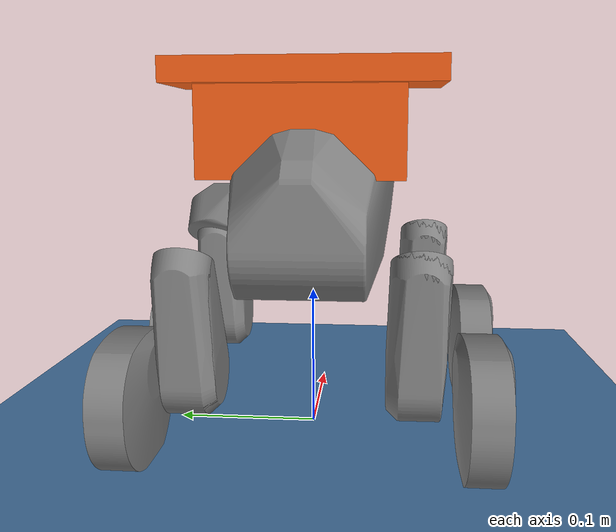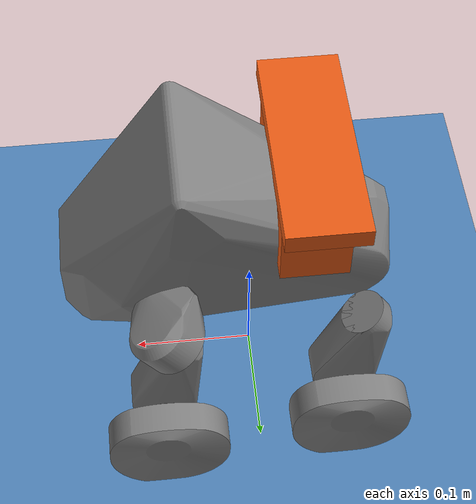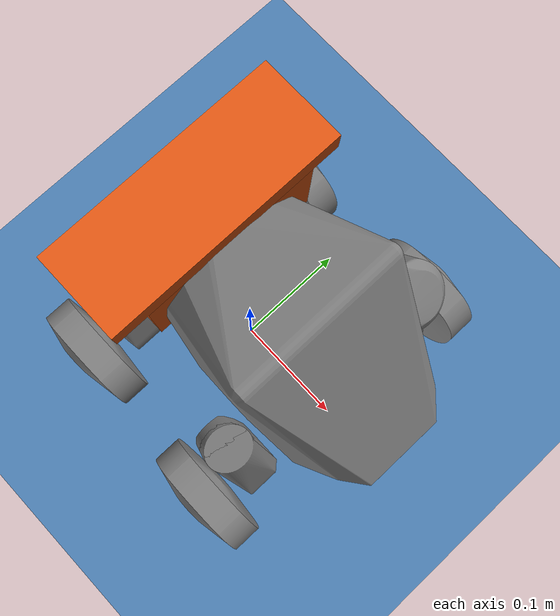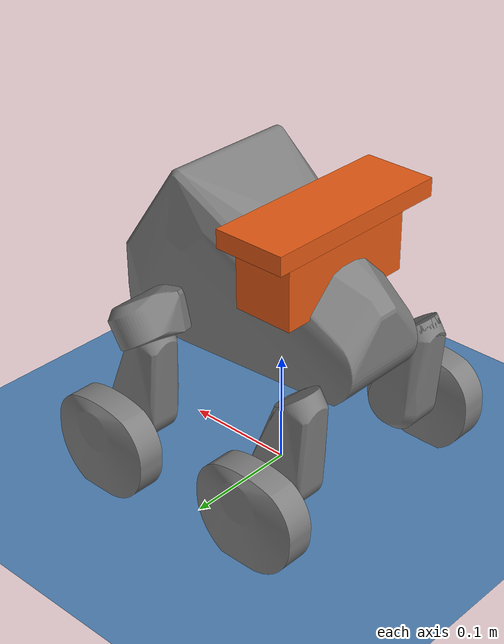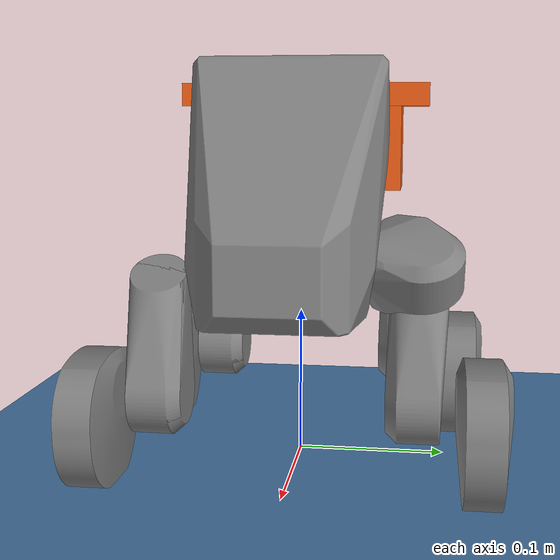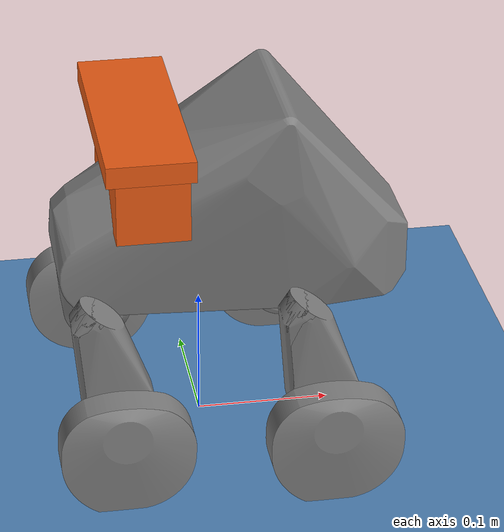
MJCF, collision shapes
<mujoco model="pupper_v3">
  <!-- POST-COOLED RIGID SHINS. Additional axial gap 9 mm; no heating or deformation. Floor-only hulls; exact self-clearance audited separately. -->
  <keyframe>
    <key name="inverted" qpos="0 0 0.116868429259 1 0 0 0 1 -0.29 2.14159265359 -1 0.29 4.14159265359 1 -0.29 2.14159265359 -1 0.29 4.14159265359" ctrl="0 0 0 0 0 0 0 0 0 0 0 0" />
  </keyframe>
  <asset>
    <texture type="skybox" builtin="gradient" rgb1=".3 .5 .7" rgb2="0 0 0" width="512" height="512" />
    <texture name="grid" type="2d" builtin="checker" width="512" height="512" rgb1=".2 .4 .6" rgb2=".4 .6 .8" />
    <material name="grid" texture="grid" texrepeat="1 1" texuniform="true" reflectance="0" />
    <mesh name="heating_module_mesh" file="Heating_module.stl" scale="0.001 0.001 0.001" />
  </asset>
  <sensor>
    <framequat name="body_quat" objtype="site" objname="body_imu_site" />
    <gyro name="body_gyro" site="body_imu_site" />
    <accelerometer name="body_acc" site="body_imu_site" />
    <framequat objtype="site" objname="body_imu_site" name="orientation" />
    <framepos objtype="site" objname="body_imu_site" name="global_position" />
    <framelinvel objtype="site" objname="body_imu_site" name="global_linvel" />
    <frameangvel objtype="site" objname="body_imu_site" name="global_angvel" />
  </sensor>
  <actuator>
    <motor name="leg_front_r_1" joint="leg_front_r_1" ctrlrange="-3 3" ctrllimited="true" />
    <motor name="leg_front_r_2" joint="leg_front_r_2" ctrlrange="-3 3" ctrllimited="true" />
    <motor name="leg_front_r_3" joint="leg_front_r_3" ctrlrange="-3 3" ctrllimited="true" />
    <motor name="leg_front_l_1" joint="leg_front_l_1" ctrlrange="-3 3" ctrllimited="true" />
    <motor name="leg_front_l_2" joint="leg_front_l_2" ctrlrange="-3 3" ctrllimited="true" />
    <motor name="leg_front_l_3" joint="leg_front_l_3" ctrlrange="-3 3" ctrllimited="true" />
    <motor name="leg_back_r_1" joint="leg_back_r_1" ctrlrange="-3 3" ctrllimited="true" />
    <motor name="leg_back_r_2" joint="leg_back_r_2" ctrlrange="-3 3" ctrllimited="true" />
    <motor name="leg_back_r_3" joint="leg_back_r_3" ctrlrange="-3 3" ctrllimited="true" />
    <motor name="leg_back_l_1" joint="leg_back_l_1" ctrlrange="-3 3" ctrllimited="true" />
    <motor name="leg_back_l_2" joint="leg_back_l_2" ctrlrange="-3 3" ctrllimited="true" />
    <motor name="leg_back_l_3" joint="leg_back_l_3" ctrlrange="-3 3" ctrllimited="true" />
  </actuator>
  <default>
    <general forcerange="-3 3" forcelimited="true" biastype="affine" gainprm="5.0 0 0" biasprm="0 -5.0 -0.1" />
    <geom condim="3" contype="0" conaffinity="0" />
    <default class="collision">
      <geom group="3" contype="0" conaffinity="1" solimp="0.015 1 0.015" friction="0.8 0.02 0.01" />
    </default>
    <joint armature="0.0016" type="hinge" damping="0.01" limited="true" />
  </default>
  <option cone="pyramidal" impratio="10" iterations="30" ls_iterations="10" timestep="0.0019230769230769232" integrator="implicitfast">
    <flag eulerdamp="disable" />
  </option>
  <compiler angle="radian" meshdir="assets" autolimits="true" />
  <asset>
    <mesh name="BodyV4v70_001" file="BodyV4v70_001.stl" />
    <mesh name="LegAssemblyForFlangedv26_001" file="LegAssemblyForFlangedv26_001.stl" />
    <mesh name="LegAssemblyForFlangedv26_002" file="LegAssemblyForFlangedv26_002.stl" />
    <mesh name="LegAssemblyForFlangedv26_003" file="LegAssemblyForFlangedv26_003.stl" />
    <mesh name="LegAssemblyForFlangedv26_010" file="LegAssemblyForFlangedv26_010.stl" scale="1 -1 1" />
    <mesh name="LegAssemblyForFlangedv26_011" file="LegAssemblyForFlangedv26_011.stl" scale="1 1 -1" />
    <mesh name="LegAssemblyForFlangedv26_012" file="LegAssemblyForFlangedv26_012.stl" scale="1 1 -1" />
    <mesh name="LegAssemblyForFlangedv26_005" file="LegAssemblyForFlangedv26_005.stl" />
    <mesh name="LegAssemblyForFlangedv26_006" file="LegAssemblyForFlangedv26_006.stl" />
    <mesh name="LegAssemblyForFlangedv26_007" file="LegAssemblyForFlangedv26_007.stl" />
    <mesh name="LegAssemblyForFlangedv26_013" file="LegAssemblyForFlangedv26_013.stl" scale="1 -1 1" />
    <mesh name="LegAssemblyForFlangedv26_014" file="LegAssemblyForFlangedv26_014.stl" scale="1 1 -1" />
    <mesh name="LegAssemblyForFlangedv26_015" file="LegAssemblyForFlangedv26_015.stl" scale="1 1 -1" />
    <mesh name="CustomLegFoot" file="CustomLegFoot.stl" scale="0.001 0.001 0.001" />
    <mesh name="ShinFloorHull" file="ShinFloorHull.stl" scale="0.001 0.001 0.001" />
    <mesh name="BodyV4v70_001_FloorHull" file="BodyV4v70_001_FloorHull.stl" scale="1 1 1" />
    <mesh name="LegAssemblyForFlangedv26_001_FloorHull" file="LegAssemblyForFlangedv26_001_FloorHull.stl" scale="1 1 1" />
    <mesh name="LegAssemblyForFlangedv26_002_FloorHull" file="LegAssemblyForFlangedv26_002_FloorHull.stl" scale="1 1 1" />
    <mesh name="LegAssemblyForFlangedv26_010_FloorHull" file="LegAssemblyForFlangedv26_010_FloorHull.stl" scale="1 -1 1" />
    <mesh name="LegAssemblyForFlangedv26_011_FloorHull" file="LegAssemblyForFlangedv26_011_FloorHull.stl" scale="1 1 -1" />
    <mesh name="LegAssemblyForFlangedv26_005_FloorHull" file="LegAssemblyForFlangedv26_005_FloorHull.stl" scale="1 1 1" />
    <mesh name="LegAssemblyForFlangedv26_006_FloorHull" file="LegAssemblyForFlangedv26_006_FloorHull.stl" scale="1 1 1" />
    <mesh name="LegAssemblyForFlangedv26_013_FloorHull" file="LegAssemblyForFlangedv26_013_FloorHull.stl" scale="1 -1 1" />
    <mesh name="LegAssemblyForFlangedv26_014_FloorHull" file="LegAssemblyForFlangedv26_014_FloorHull.stl" scale="1 1 -1" />
  </asset>
  <worldbody>
    <body name="base_link" pos="0 0 0.1448" gravcomp="0" quat="1 0 0 0">
      <inertial pos="0.025 0 0.015" quat="0 0.677807 0 0.73524" mass="1.506" diaginertia="0.00854071 0.0085 0.00235929" />
      <freejoint name="world_to_body" />
      <geom quat="0.499998 -0.5 -0.500002 0.5" type="mesh" contype="0" conaffinity="0" group="1" density="0" mesh="BodyV4v70_001" />
      <body name="leg_front_r_1" pos="0.075 -0.0835 0" quat="0.620543264188 0.620545896937 -0.339005768559 0.339004330282" gravcomp="0">
        <inertial pos="0 0 0" mass="0.18" diaginertia="7.4e-05 5.8e-05 4.8e-05" />
        <joint name="leg_front_r_1" pos="0 0 0" axis="0 0 1" range="-1.12 2.41" ref="1" />
        <geom pos="0 0 -0.028" quat="1.32679e-06 0 0 1" type="mesh" contype="0" conaffinity="0" group="1" density="0" mesh="LegAssemblyForFlangedv26_001" />
        <body name="leg_front_r_2" pos="0 0 0" quat="0.707106781177 2.24088930653e-06 -0.707106781177 4.83017850524e-06" gravcomp="0">
          <inertial pos="0 -0.0334 0.05419" quat="0.903877 0.427791 0 0" mass="0.186" diaginertia="0.000113 9.74951e-05 4.65049e-05" />
          <joint name="leg_front_r_2" pos="0 0 0" axis="0 0 1" range="-0.32 3.04" ref="0" />
          <geom pos="-0.028 0 0" quat="-2.93388e-06 0.707108 2.26082e-06 0.707106" type="mesh" contype="0" conaffinity="0" group="1" density="0" mesh="LegAssemblyForFlangedv26_002" />
          <body name="leg_front_r_3" pos="0 -0.0494 0.0685" quat="0.620543264188 -0.339005768559 0.620545896937 -0.339004330282" gravcomp="0">
            <inertial pos="0.000573 -0.012143 0.039671" mass="0.05518" fullinertia="3.854067e-05 4.223493e-05 7.346430e-05 5.978470e-07 1.8696e-08 -3.21278e-07" />
            <joint name="leg_front_r_3" pos="0 0 0" axis="0 0 1" ref="-1" limited="false" />
            <geom pos="0 0 0.0226" type="mesh" contype="0" conaffinity="0" group="1" density="0" mesh="CustomLegFoot" name="front_r_shin_visual" />
            <site name="leg_front_r_3_foot_site" pos="0.00063 -0.048 0.038884" />
            <geom pos="0 0 0.0226" name="front_r_floor_contact" type="mesh" mesh="ShinFloorHull" density="0" group="3" contype="0" conaffinity="1" friction="0.8 0.02 0.001" condim="3" solref="0.01 1" />
          </body>
          <geom pos="-0.028 0 0" quat="-2.93388e-06 0.707108 2.26082e-06 0.707106" name="leg_front_r_2_floor_envelope" type="mesh" mesh="LegAssemblyForFlangedv26_002_FloorHull" density="0" group="3" contype="0" conaffinity="1" friction="0.8 0.02 0.001" condim="3" solref="0.01 1" />
        </body>
        <geom pos="0 0 -0.028" quat="1.32679e-06 0 0 1" name="leg_front_r_1_floor_envelope" type="mesh" mesh="LegAssemblyForFlangedv26_001_FloorHull" density="0" group="3" contype="0" conaffinity="1" friction="0.8 0.02 0.001" condim="3" solref="0.01 1" />
      </body>
      <body name="leg_front_l_1" pos="0.075 0.0835 0" quat="0.620543264188 -0.620545896937 -0.339005768559 -0.339004330282" gravcomp="0">
        <inertial pos="0 0 0" mass="0.18" diaginertia="7.4e-05 5.8e-05 4.8e-05" />
        <joint name="leg_front_l_1" pos="0 0 0" axis="0 0 1" range="-2.41 1.12" ref="-1" />
        <geom pos="0 0 -0.028" quat="1.32679e-06 0 0 1" type="mesh" contype="0" conaffinity="0" group="1" density="0" mesh="LegAssemblyForFlangedv26_010" />
        <body name="leg_front_l_2" pos="0 0 0" quat="-3.89601879435e-06 0.707106781181 -1.29866959812e-06 -0.707106781181" gravcomp="0">
          <inertial pos="0 -0.0334 0.05419" quat="0.903877 0.427791 0 0" mass="0.186" diaginertia="0.000113 9.74951e-05 4.65049e-05" />
          <joint name="leg_front_l_2" pos="0 0 0" axis="0 0 1" range="-3.04 0.32" ref="0" />
          <geom pos="0.028 0 0" quat="-2.93388e-06 0.707108 2.26082e-06 0.707106" type="mesh" contype="0" conaffinity="0" group="1" density="0" mesh="LegAssemblyForFlangedv26_011" />
          <body name="leg_front_l_3" pos="0 -0.0494 0.0685" quat="-0.339003506947 -0.620545447145 0.339006591895 0.620543713977" gravcomp="0">
            <inertial pos="-0.000573 0.012143 0.039671" mass="0.05518" fullinertia="3.854067e-05 4.223493e-05 7.346430e-05 5.978470e-07 -1.8696e-08 3.21278e-07" />
            <joint name="leg_front_l_3" pos="0 0 0" axis="0 0 1" ref="1" limited="false" />
            <geom pos="0 0 0.0226" quat="0 0 0 1" type="mesh" contype="0" conaffinity="0" group="1" density="0" mesh="CustomLegFoot" name="front_l_shin_visual" />
            <site name="leg_front_l_3_foot_site" pos="-0.00063 0.048 0.038884" />
            <geom pos="0 0 0.0226" quat="0 0 0 1" name="front_l_floor_contact" type="mesh" mesh="ShinFloorHull" density="0" group="3" contype="0" conaffinity="1" friction="0.8 0.02 0.001" condim="3" solref="0.01 1" />
          </body>
          <geom pos="0.028 0 0" quat="-2.93388e-06 0.707108 2.26082e-06 0.707106" name="leg_front_l_2_floor_envelope" type="mesh" mesh="LegAssemblyForFlangedv26_011_FloorHull" density="0" group="3" contype="0" conaffinity="1" friction="0.8 0.02 0.001" condim="3" solref="0.01 1" />
        </body>
        <geom pos="0 0 -0.028" quat="1.32679e-06 0 0 1" name="leg_front_l_1_floor_envelope" type="mesh" mesh="LegAssemblyForFlangedv26_010_FloorHull" density="0" group="3" contype="0" conaffinity="1" friction="0.8 0.02 0.001" condim="3" solref="0.01 1" />
      </body>
      <body name="leg_back_r_1" pos="-0.075 -0.0725 0" quat="0.620543264188 0.620545896937 -0.339005768559 0.339004330282" gravcomp="0">
        <inertial pos="0 0 0" mass="0.18" diaginertia="7.4e-05 5.8e-05 4.8e-05" />
        <joint name="leg_back_r_1" pos="0 0 0" axis="0 0 1" range="-1.12 2.41" ref="1" />
        <geom pos="0 0 -0.028" quat="1.32679e-06 0 0 1" type="mesh" contype="0" conaffinity="0" group="1" density="0" mesh="LegAssemblyForFlangedv26_005" />
        <body name="leg_back_r_2" pos="0 0 0" quat="0.707106781177 2.24088930653e-06 -0.707106781177 4.83017850524e-06" gravcomp="0">
          <inertial pos="0 -0.0334 0.05419" quat="0.903877 0.427791 0 0" mass="0.186" diaginertia="0.000113 9.74951e-05 4.65049e-05" />
          <joint name="leg_back_r_2" pos="0 0 0" axis="0 0 1" range="-0.32 3.04" ref="0" />
          <geom pos="-0.028 0 0" quat="-2.93388e-06 0.707108 2.26082e-06 0.707106" type="mesh" contype="0" conaffinity="0" group="1" density="0" mesh="LegAssemblyForFlangedv26_006" />
          <body name="leg_back_r_3" pos="0 -0.0494 0.0685" quat="0.620543264188 -0.339005768559 0.620545896937 -0.339004330282" gravcomp="0">
            <inertial pos="0.000573 -0.012143 0.039671" mass="0.05518" fullinertia="3.854067e-05 4.223493e-05 7.346430e-05 5.978470e-07 1.8696e-08 -3.21278e-07" />
            <joint name="leg_back_r_3" pos="0 0 0" axis="0 0 1" ref="-1" limited="false" />
            <geom pos="0 0 0.0226" type="mesh" contype="0" conaffinity="0" group="1" density="0" mesh="CustomLegFoot" name="back_r_shin_visual" />
            <site name="leg_back_r_3_foot_site" pos="0.00063 -0.048 0.038884" />
            <geom pos="0 0 0.0226" name="back_r_floor_contact" type="mesh" mesh="ShinFloorHull" density="0" group="3" contype="0" conaffinity="1" friction="0.8 0.02 0.001" condim="3" solref="0.01 1" />
          </body>
          <geom pos="-0.028 0 0" quat="-2.93388e-06 0.707108 2.26082e-06 0.707106" name="leg_back_r_2_floor_envelope" type="mesh" mesh="LegAssemblyForFlangedv26_006_FloorHull" density="0" group="3" contype="0" conaffinity="1" friction="0.8 0.02 0.001" condim="3" solref="0.01 1" />
        </body>
        <geom pos="0 0 -0.028" quat="1.32679e-06 0 0 1" name="leg_back_r_1_floor_envelope" type="mesh" mesh="LegAssemblyForFlangedv26_005_FloorHull" density="0" group="3" contype="0" conaffinity="1" friction="0.8 0.02 0.001" condim="3" solref="0.01 1" />
      </body>
      <body name="leg_back_l_1" pos="-0.075 0.0725 0" quat="0.620543264188 -0.620545896937 -0.339005768559 -0.339004330282" gravcomp="0">
        <inertial pos="0 0 0" mass="0.18" diaginertia="7.4e-05 5.8e-05 4.8e-05" />
        <joint name="leg_back_l_1" pos="0 0 0" axis="0 0 1" range="-2.41 1.12" ref="-1" />
        <geom pos="0 0 -0.028" quat="1.32679e-06 0 0 1" type="mesh" contype="0" conaffinity="0" group="1" density="0" mesh="LegAssemblyForFlangedv26_013" />
        <body name="leg_back_l_2" pos="0 0 0" quat="-3.89601879435e-06 0.707106781181 -1.29866959812e-06 -0.707106781181" gravcomp="0">
          <inertial pos="0 -0.0334 0.05419" quat="0.903877 0.427791 0 0" mass="0.186" diaginertia="0.000113 9.74951e-05 4.65049e-05" />
          <joint name="leg_back_l_2" pos="0 0 0" axis="0 0 1" range="-3.04 0.32" ref="0" />
          <geom pos="0.028 0 0" quat="-2.93388e-06 0.707108 2.26082e-06 0.707106" type="mesh" contype="0" conaffinity="0" group="1" density="0" mesh="LegAssemblyForFlangedv26_014" />
          <body name="leg_back_l_3" pos="0 -0.0494 0.0685" quat="-0.339003506947 -0.620545447145 0.339006591895 0.620543713977" gravcomp="0">
            <inertial pos="-0.000573 0.012143 0.039671" mass="0.05518" fullinertia="3.854067e-05 4.223493e-05 7.346430e-05 5.978470e-07 -1.8696e-08 3.21278e-07" />
            <joint name="leg_back_l_3" pos="0 0 0" axis="0 0 1" ref="1" limited="false" />
            <geom pos="0 0 0.0226" quat="0 0 0 1" type="mesh" contype="0" conaffinity="0" group="1" density="0" mesh="CustomLegFoot" name="back_l_shin_visual" />
            <site name="leg_back_l_3_foot_site" pos="-0.00063 0.048 0.038884" />
            <geom pos="0 0 0.0226" quat="0 0 0 1" name="back_l_floor_contact" type="mesh" mesh="ShinFloorHull" density="0" group="3" contype="0" conaffinity="1" friction="0.8 0.02 0.001" condim="3" solref="0.01 1" />
          </body>
          <geom pos="0.028 0 0" quat="-2.93388e-06 0.707108 2.26082e-06 0.707106" name="leg_back_l_2_floor_envelope" type="mesh" mesh="LegAssemblyForFlangedv26_014_FloorHull" density="0" group="3" contype="0" conaffinity="1" friction="0.8 0.02 0.001" condim="3" solref="0.01 1" />
        </body>
        <geom pos="0 0 -0.028" quat="1.32679e-06 0 0 1" name="leg_back_l_1_floor_envelope" type="mesh" mesh="LegAssemblyForFlangedv26_013_FloorHull" density="0" group="3" contype="0" conaffinity="1" friction="0.8 0.02 0.001" condim="3" solref="0.01 1" />
      </body>
      <site name="body_imu_site" pos="0.09 0 0.032" />
      <geom quat="0.499998 -0.5 -0.500002 0.5" name="base_link_floor_envelope" type="mesh" mesh="BodyV4v70_001_FloorHull" density="0" group="3" contype="0" conaffinity="1" friction="0.8 0.02 0.001" condim="3" solref="0.01 1" />
      <body name="heating_module" pos="-0.036349545 3.1565e-05 0.032506671263" quat="0.5 -0.5 -0.5 0.5">
        <inertial mass="0.60191707499" pos="0.003048 -0.043688 0.0062992" fullinertia="0.00042315693885862 0.0011088116468432 0.0012522050770235 4.6822344548672e-06 2.3411172274336e-06 2.8386046382632e-05" />
        <geom name="heating_module_visual" type="mesh" mesh="heating_module_mesh" group="1" density="0" contype="0" conaffinity="0" rgba="0.96 0.49 0.08 1" />
        <geom name="heating_module_mount_plate_collision" type="box" pos="-3.1566499999997e-05 -0.0729689255 0.009196205" size="0.0870712015 0.0079756015 0.03175" density="0" group="3" contype="0" conaffinity="1" rgba="0.9 0.35 0.08 0.25" friction="0.8 0.02 0.01" />
        <geom name="heating_module_electronics_collision" type="box" pos="0.0022393245 -0.035668326 0.0050547045" size="0.0655292535 0.029324998 0.0267500005" density="0" group="3" contype="0" conaffinity="1" rgba="0.9 0.35 0.08 0.25" friction="0.8 0.02 0.01" />
        <geom name="heating_module_end_bracket_collision" type="box" pos="-3.15645e-05 -0.0031683285 -0.006349545" size="0.0275000005 0.0031750005 0.01620425" density="0" group="3" contype="0" conaffinity="1" rgba="0.9 0.35 0.08 0.25" friction="0.8 0.02 0.01" />
      </body>
    </body>
    <geom name="floor" size="0 0 .05" type="plane" material="grid" condim="3" contype="1" conaffinity="0" />
    <geom name="floor_visual" size="0 0 .05" pos="0 0 -0.001" type="plane" material="grid" condim="3" contype="0" conaffinity="0" group="1" />
    <light name="spotlight" mode="targetbodycom" target="base_link" diffuse="0.9 0.9 0.9" specular="0.3 0.3 0.3" pos="0 -4 4" cutoff="100" />
    <camera name="tracking_cam" mode="targetbody" target="base_link" pos="0.5 -0.5 0.5" />
  </worldbody>
  <custom>
    <numeric data="5" name="max_contact_points" />
    <numeric data="4" name="max_geom_pairs" />
    <numeric name="quadmorph_additional_hub_gap_m" data="0.009" />
  </custom>
</mujoco>
